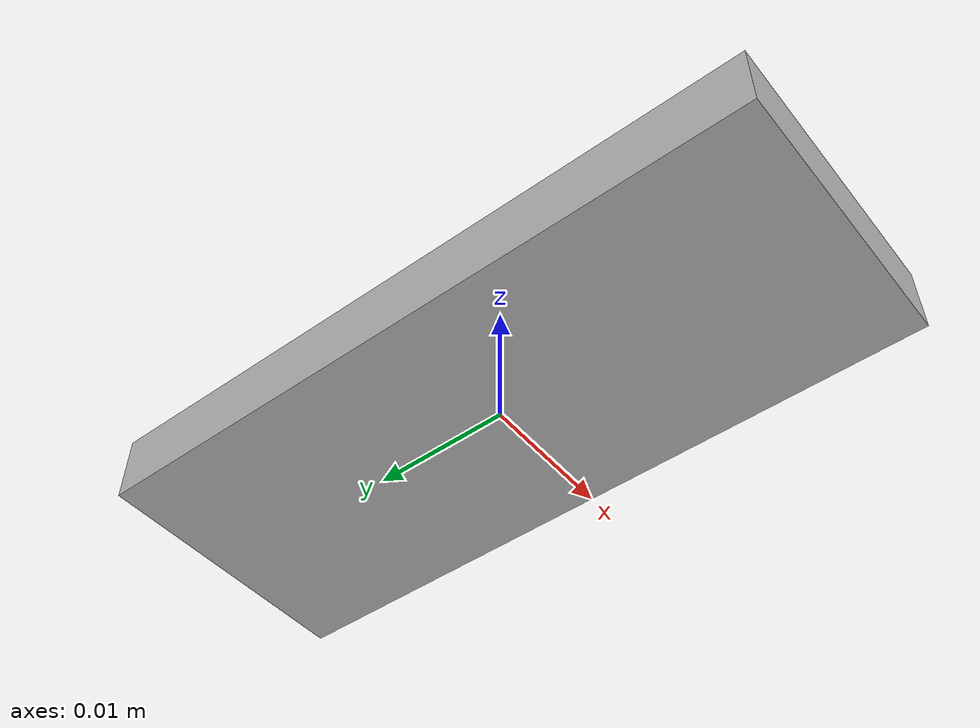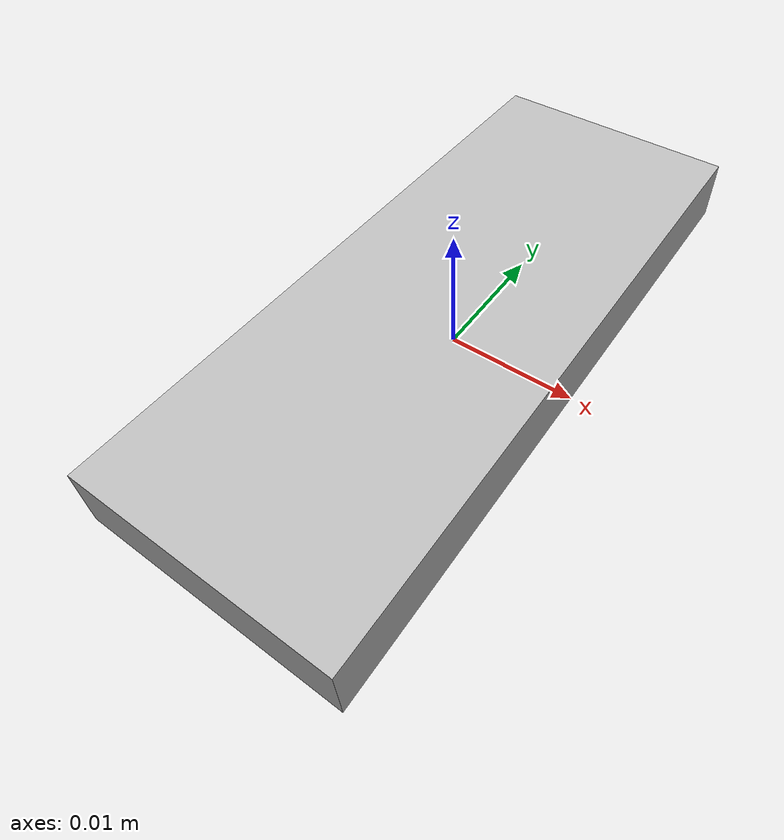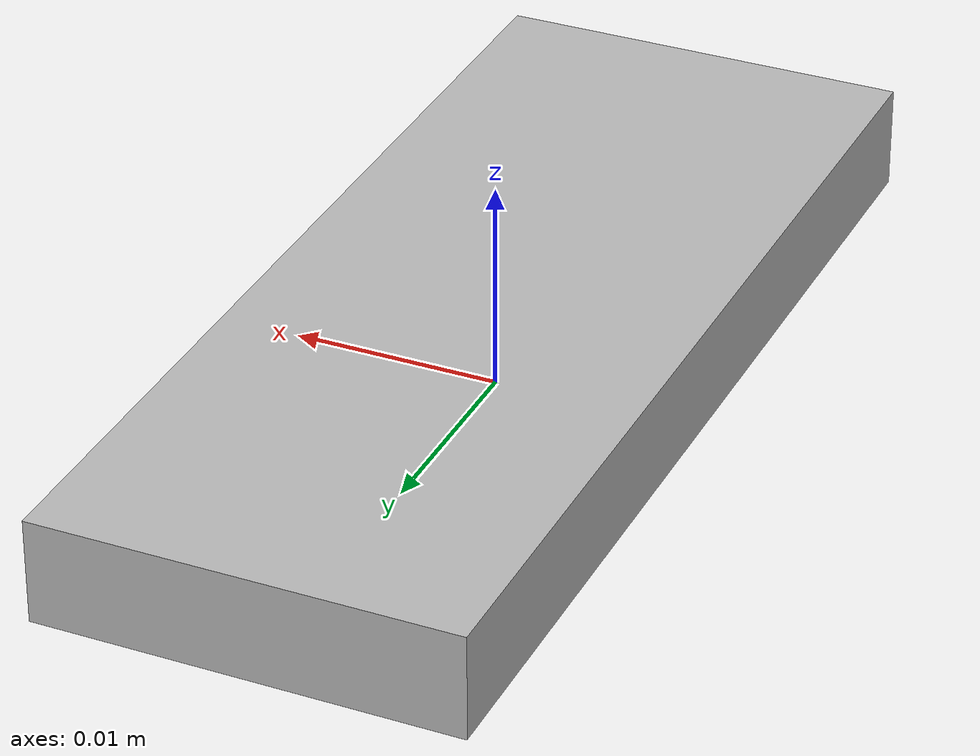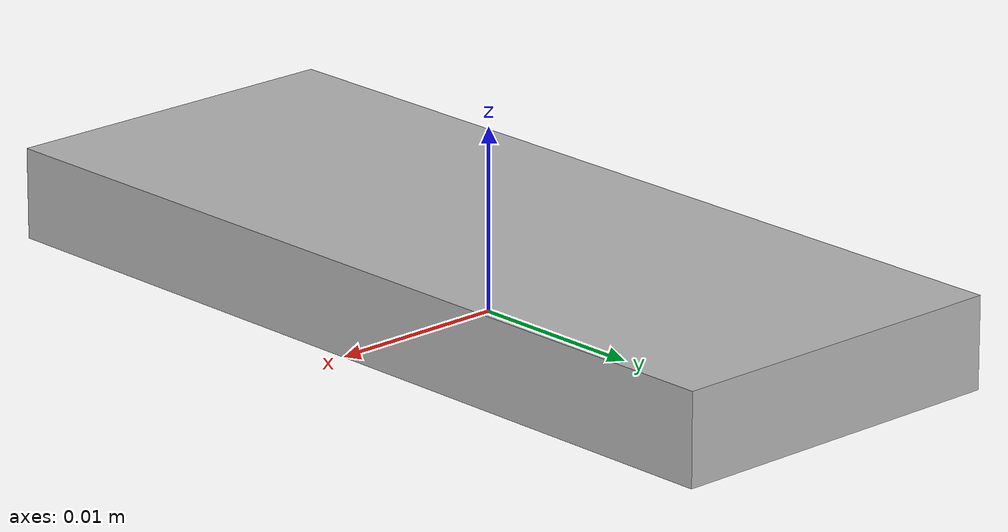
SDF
<?xml version="1.0" ?>
<sdf version="1.5">
  <model name="scale_bar">
    <static>false</static>
    <link name="Board">
      <pose frame=''>0 0 0.0025 0 0 0</pose>
      <inertial>
        <mass>2</mass>
        <inertia>
          <ixx>5</ixx>
          <ixy>0</ixy>
          <ixz>0</ixz>
          <iyy>5</iyy>
          <iyz>0</iyz>
          <izz>5</izz>
        </inertia>
      </inertial>

      <collision name="Board">
        <geometry>
          <box>
            <size>0.02 0.05 0.005</size>
          </box>
        </geometry>
        <surface>
          <contact>
            <poissons_ratio>10</poissons_ratio>
            <elastic_modulus>8.0e+10</elastic_modulus>
            <ode>
              <kp>100000</kp>
              <kd>100</kd>
              <max_vel>100.0</max_vel>
              <min_depth>0.001</min_depth>
            </ode>
          </contact>
          <friction>
            <torsional>
              <coefficient>1.0</coefficient>
              <use_patch_radius>0</use_patch_radius>
              <surface_radius>0.01</surface_radius>
            </torsional>
          </friction>
        </surface>
      </collision>

      <visual name="Board">
        <geometry>
          <box>
            <size>0.02 0.05 0.005</size>
          </box>
        </geometry>
        <material>
          <script>
            <uri>model://scale_bar/materials/scripts</uri>
            <uri>model://scale_bar/materials/texture</uri>
            <name>BlackWhite/Image</name>
          </script>
        </material>
      </visual>
    </link>

  </model>
</sdf>
